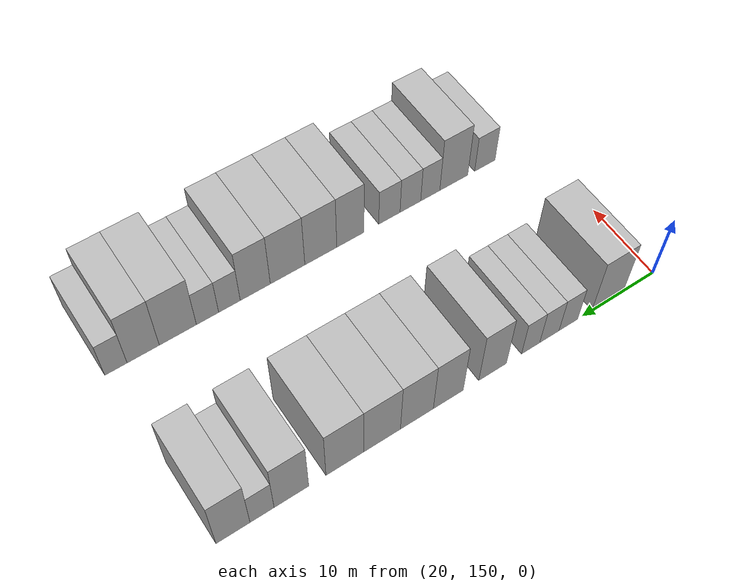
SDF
<sdf version="1.6">
 <world name="default">
  <model name="building_86">
   <static>1</static>
   <pose>25.0000 156.4471 0 0.000000 0.000000 0.000000</pose>
   <link name="link">
    <pose>0 0 4.50 0 0 0</pose>
    <collision name="collision"><geometry><box><size>10.0000 4.4266 9.0000</size></box></geometry></collision>
    <visual name="visual">
     <cast_shadows>0</cast_shadows>
     <geometry><box><size>10.0000 4.4266 9.0000</size></box></geometry>
     <material>
      <script>
       <uri>model://HANNAS_wall/materials/scripts</uri>
       <uri>model://HANNAS_wall/materials/textures</uri>
       <name>vrc/HANNAS_wall</name>
      </script>
     </material>
    </visual>
   </link>
  </model>
  <model name="building_87">
   <static>1</static>
   <pose>25.0000 161.9369 0 0.000000 0.000000 0.000000</pose>
   <link name="link">
    <pose>0 0 3.00 0 0 0</pose>
    <collision name="collision"><geometry><box><size>10.0000 2.5530 6.0000</size></box></geometry></collision>
    <visual name="visual">
     <cast_shadows>0</cast_shadows>
     <geometry><box><size>10.0000 2.5530 6.0000</size></box></geometry>
     <material>
      <script>
       <uri>model://HANNAS_wall/materials/scripts</uri>
       <uri>model://HANNAS_wall/materials/textures</uri>
       <name>vrc/HANNAS_wall</name>
      </script>
     </material>
    </visual>
   </link>
  </model>
  <model name="building_88">
   <static>1</static>
   <pose>25.0000 164.5136 0 0.000000 0.000000 0.000000</pose>
   <link name="link">
    <pose>0 0 3.00 0 0 0</pose>
    <collision name="collision"><geometry><box><size>10.0000 2.6004 6.0000</size></box></geometry></collision>
    <visual name="visual">
     <cast_shadows>0</cast_shadows>
     <geometry><box><size>10.0000 2.6004 6.0000</size></box></geometry>
     <material>
      <script>
       <uri>model://HANNAS_wall/materials/scripts</uri>
       <uri>model://HANNAS_wall/materials/textures</uri>
       <name>vrc/HANNAS_wall</name>
      </script>
     </material>
    </visual>
   </link>
  </model>
  <model name="building_89">
   <static>1</static>
   <pose>25.0000 167.0286 0 0.000000 0.000000 0.000000</pose>
   <link name="link">
    <pose>0 0 3.00 0 0 0</pose>
    <collision name="collision"><geometry><box><size>10.0000 2.4295 6.0000</size></box></geometry></collision>
    <visual name="visual">
     <cast_shadows>0</cast_shadows>
     <geometry><box><size>10.0000 2.4295 6.0000</size></box></geometry>
     <material>
      <script>
       <uri>model://HANNAS_wall/materials/scripts</uri>
       <uri>model://HANNAS_wall/materials/textures</uri>
       <name>vrc/HANNAS_wall</name>
      </script>
     </material>
    </visual>
   </link>
  </model>
  <model name="building_90">
   <static>1</static>
   <pose>25.0000 172.0446 0 0.000000 0.000000 0.000000</pose>
   <link name="link">
    <pose>0 0 4.50 0 0 0</pose>
    <collision name="collision"><geometry><box><size>10.0000 3.6026 9.0000</size></box></geometry></collision>
    <visual name="visual">
     <cast_shadows>0</cast_shadows>
     <geometry><box><size>10.0000 3.6026 9.0000</size></box></geometry>
     <material>
      <script>
       <uri>model://HANNAS_wall/materials/scripts</uri>
       <uri>model://HANNAS_wall/materials/textures</uri>
       <name>vrc/HANNAS_wall</name>
      </script>
     </material>
    </visual>
   </link>
  </model>
  <model name="building_91">
   <static>1</static>
   <pose>25.0000 177.7338 0 0.000000 0.000000 0.000000</pose>
   <link name="link">
    <pose>0 0 4.50 0 0 0</pose>
    <collision name="collision"><geometry><box><size>10.0000 3.7758 9.0000</size></box></geometry></collision>
    <visual name="visual">
     <cast_shadows>0</cast_shadows>
     <geometry><box><size>10.0000 3.7758 9.0000</size></box></geometry>
     <material>
      <script>
       <uri>model://HANNAS_wall/materials/scripts</uri>
       <uri>model://HANNAS_wall/materials/textures</uri>
       <name>vrc/HANNAS_wall</name>
      </script>
     </material>
    </visual>
   </link>
  </model>
  <model name="building_92">
   <static>1</static>
   <pose>25.0000 181.6630 0 0.000000 0.000000 0.000000</pose>
   <link name="link">
    <pose>0 0 4.50 0 0 0</pose>
    <collision name="collision"><geometry><box><size>10.0000 4.0826 9.0000</size></box></geometry></collision>
    <visual name="visual">
     <cast_shadows>0</cast_shadows>
     <geometry><box><size>10.0000 4.0826 9.0000</size></box></geometry>
     <material>
      <script>
       <uri>model://HANNAS_wall/materials/scripts</uri>
       <uri>model://HANNAS_wall/materials/textures</uri>
       <name>vrc/HANNAS_wall</name>
      </script>
     </material>
    </visual>
   </link>
  </model>
  <model name="building_93">
   <static>1</static>
   <pose>25.0000 185.9407 0 0.000000 0.000000 0.000000</pose>
   <link name="link">
    <pose>0 0 4.50 0 0 0</pose>
    <collision name="collision"><geometry><box><size>10.0000 4.4726 9.0000</size></box></geometry></collision>
    <visual name="visual">
     <cast_shadows>0</cast_shadows>
     <geometry><box><size>10.0000 4.4726 9.0000</size></box></geometry>
     <material>
      <script>
       <uri>model://HANNAS_wall/materials/scripts</uri>
       <uri>model://HANNAS_wall/materials/textures</uri>
       <name>vrc/HANNAS_wall</name>
      </script>
     </material>
    </visual>
   </link>
  </model>
  <model name="building_94">
   <static>1</static>
   <pose>25.0000 190.4036 0 0.000000 0.000000 0.000000</pose>
   <link name="link">
    <pose>0 0 4.50 0 0 0</pose>
    <collision name="collision"><geometry><box><size>10.0000 4.4531 9.0000</size></box></geometry></collision>
    <visual name="visual">
     <cast_shadows>0</cast_shadows>
     <geometry><box><size>10.0000 4.4531 9.0000</size></box></geometry>
     <material>
      <script>
       <uri>model://HANNAS_wall/materials/scripts</uri>
       <uri>model://HANNAS_wall/materials/textures</uri>
       <name>vrc/HANNAS_wall</name>
      </script>
     </material>
    </visual>
   </link>
  </model>
  <model name="building_95">
   <static>1</static>
   <pose>25.0000 196.6165 0 0.000000 0.000000 0.000000</pose>
   <link name="link">
    <pose>0 0 4.50 0 0 0</pose>
    <collision name="collision"><geometry><box><size>10.0000 3.9728 9.0000</size></box></geometry></collision>
    <visual name="visual">
     <cast_shadows>0</cast_shadows>
     <geometry><box><size>10.0000 3.9728 9.0000</size></box></geometry>
     <material>
      <script>
       <uri>model://HANNAS_wall/materials/scripts</uri>
       <uri>model://HANNAS_wall/materials/textures</uri>
       <name>vrc/HANNAS_wall</name>
      </script>
     </material>
    </visual>
   </link>
  </model>
  <model name="building_96">
   <static>1</static>
   <pose>25.0000 199.9591 0 0.000000 0.000000 0.000000</pose>
   <link name="link">
    <pose>0 0 3.00 0 0 0</pose>
    <collision name="collision"><geometry><box><size>10.0000 2.7123 6.0000</size></box></geometry></collision>
    <visual name="visual">
     <cast_shadows>0</cast_shadows>
     <geometry><box><size>10.0000 2.7123 6.0000</size></box></geometry>
     <material>
      <script>
       <uri>model://HANNAS_wall/materials/scripts</uri>
       <uri>model://HANNAS_wall/materials/textures</uri>
       <name>vrc/HANNAS_wall</name>
      </script>
     </material>
    </visual>
   </link>
  </model>
  <model name="building_97">
   <static>1</static>
   <pose>25.0000 203.2015 0 0.000000 0.000000 0.000000</pose>
   <link name="link">
    <pose>0 0 4.50 0 0 0</pose>
    <collision name="collision"><geometry><box><size>10.0000 3.7725 9.0000</size></box></geometry></collision>
    <visual name="visual">
     <cast_shadows>0</cast_shadows>
     <geometry><box><size>10.0000 3.7725 9.0000</size></box></geometry>
     <material>
      <script>
       <uri>model://HANNAS_wall/materials/scripts</uri>
       <uri>model://HANNAS_wall/materials/textures</uri>
       <name>vrc/HANNAS_wall</name>
      </script>
     </material>
    </visual>
   </link>
  </model>
  <model name="building_188">
   <static>1</static>
   <pose>47.0000 156.4634 0 0.000000 0.000000 0.000000</pose>
   <link name="link">
    <pose>0 0 3.00 0 0 0</pose>
    <collision name="collision"><geometry><box><size>10.0000 2.9594 6.0000</size></box></geometry></collision>
    <visual name="visual">
     <cast_shadows>0</cast_shadows>
     <geometry><box><size>10.0000 2.9594 6.0000</size></box></geometry>
     <material>
      <script>
       <uri>model://HANNAS_wall/materials/scripts</uri>
       <uri>model://HANNAS_wall/materials/textures</uri>
       <name>vrc/HANNAS_wall</name>
      </script>
     </material>
    </visual>
   </link>
  </model>
  <model name="building_189">
   <static>1</static>
   <pose>47.0000 160.9398 0 0.000000 0.000000 0.000000</pose>
   <link name="link">
    <pose>0 0 4.50 0 0 0</pose>
    <collision name="collision"><geometry><box><size>10.0000 3.9934 9.0000</size></box></geometry></collision>
    <visual name="visual">
     <cast_shadows>0</cast_shadows>
     <geometry><box><size>10.0000 3.9934 9.0000</size></box></geometry>
     <material>
      <script>
       <uri>model://HANNAS_wall/materials/scripts</uri>
       <uri>model://HANNAS_wall/materials/textures</uri>
       <name>vrc/HANNAS_wall</name>
      </script>
     </material>
    </visual>
   </link>
  </model>
  <model name="building_190">
   <static>1</static>
   <pose>47.0000 164.2785 0 0.000000 0.000000 0.000000</pose>
   <link name="link">
    <pose>0 0 3.00 0 0 0</pose>
    <collision name="collision"><geometry><box><size>10.0000 2.6839 6.0000</size></box></geometry></collision>
    <visual name="visual">
     <cast_shadows>0</cast_shadows>
     <geometry><box><size>10.0000 2.6839 6.0000</size></box></geometry>
     <material>
      <script>
       <uri>model://HANNAS_wall/materials/scripts</uri>
       <uri>model://HANNAS_wall/materials/textures</uri>
       <name>vrc/HANNAS_wall</name>
      </script>
     </material>
    </visual>
   </link>
  </model>
  <model name="building_191">
   <static>1</static>
   <pose>47.0000 167.0557 0 0.000000 0.000000 0.000000</pose>
   <link name="link">
    <pose>0 0 3.00 0 0 0</pose>
    <collision name="collision"><geometry><box><size>10.0000 2.8705 6.0000</size></box></geometry></collision>
    <visual name="visual">
     <cast_shadows>0</cast_shadows>
     <geometry><box><size>10.0000 2.8705 6.0000</size></box></geometry>
     <material>
      <script>
       <uri>model://HANNAS_wall/materials/scripts</uri>
       <uri>model://HANNAS_wall/materials/textures</uri>
       <name>vrc/HANNAS_wall</name>
      </script>
     </material>
    </visual>
   </link>
  </model>
  <model name="building_192">
   <static>1</static>
   <pose>47.0000 169.9520 0 0.000000 0.000000 0.000000</pose>
   <link name="link">
    <pose>0 0 3.00 0 0 0</pose>
    <collision name="collision"><geometry><box><size>10.0000 2.9221 6.0000</size></box></geometry></collision>
    <visual name="visual">
     <cast_shadows>0</cast_shadows>
     <geometry><box><size>10.0000 2.9221 6.0000</size></box></geometry>
     <material>
      <script>
       <uri>model://HANNAS_wall/materials/scripts</uri>
       <uri>model://HANNAS_wall/materials/textures</uri>
       <name>vrc/HANNAS_wall</name>
      </script>
     </material>
    </visual>
   </link>
  </model>
  <model name="building_193">
   <static>1</static>
   <pose>47.0000 175.2316 0 0.000000 0.000000 0.000000</pose>
   <link name="link">
    <pose>0 0 4.50 0 0 0</pose>
    <collision name="collision"><geometry><box><size>10.0000 3.6372 9.0000</size></box></geometry></collision>
    <visual name="visual">
     <cast_shadows>0</cast_shadows>
     <geometry><box><size>10.0000 3.6372 9.0000</size></box></geometry>
     <material>
      <script>
       <uri>model://HANNAS_wall/materials/scripts</uri>
       <uri>model://HANNAS_wall/materials/textures</uri>
       <name>vrc/HANNAS_wall</name>
      </script>
     </material>
    </visual>
   </link>
  </model>
  <model name="building_194">
   <static>1</static>
   <pose>47.0000 179.1455 0 0.000000 0.000000 0.000000</pose>
   <link name="link">
    <pose>0 0 4.50 0 0 0</pose>
    <collision name="collision"><geometry><box><size>10.0000 4.1905 9.0000</size></box></geometry></collision>
    <visual name="visual">
     <cast_shadows>0</cast_shadows>
     <geometry><box><size>10.0000 4.1905 9.0000</size></box></geometry>
     <material>
      <script>
       <uri>model://HANNAS_wall/materials/scripts</uri>
       <uri>model://HANNAS_wall/materials/textures</uri>
       <name>vrc/HANNAS_wall</name>
      </script>
     </material>
    </visual>
   </link>
  </model>
  <model name="building_195">
   <static>1</static>
   <pose>47.0000 183.4636 0 0.000000 0.000000 0.000000</pose>
   <link name="link">
    <pose>0 0 4.50 0 0 0</pose>
    <collision name="collision"><geometry><box><size>10.0000 4.4457 9.0000</size></box></geometry></collision>
    <visual name="visual">
     <cast_shadows>0</cast_shadows>
     <geometry><box><size>10.0000 4.4457 9.0000</size></box></geometry>
     <material>
      <script>
       <uri>model://HANNAS_wall/materials/scripts</uri>
       <uri>model://HANNAS_wall/materials/textures</uri>
       <name>vrc/HANNAS_wall</name>
      </script>
     </material>
    </visual>
   </link>
  </model>
  <model name="building_196">
   <static>1</static>
   <pose>47.0000 187.5838 0 0.000000 0.000000 0.000000</pose>
   <link name="link">
    <pose>0 0 4.50 0 0 0</pose>
    <collision name="collision"><geometry><box><size>10.0000 3.7947 9.0000</size></box></geometry></collision>
    <visual name="visual">
     <cast_shadows>0</cast_shadows>
     <geometry><box><size>10.0000 3.7947 9.0000</size></box></geometry>
     <material>
      <script>
       <uri>model://HANNAS_wall/materials/scripts</uri>
       <uri>model://HANNAS_wall/materials/textures</uri>
       <name>vrc/HANNAS_wall</name>
      </script>
     </material>
    </visual>
   </link>
  </model>
  <model name="building_197">
   <static>1</static>
   <pose>47.0000 190.8206 0 0.000000 0.000000 0.000000</pose>
   <link name="link">
    <pose>0 0 3.00 0 0 0</pose>
    <collision name="collision"><geometry><box><size>10.0000 2.6788 6.0000</size></box></geometry></collision>
    <visual name="visual">
     <cast_shadows>0</cast_shadows>
     <geometry><box><size>10.0000 2.6788 6.0000</size></box></geometry>
     <material>
      <script>
       <uri>model://HANNAS_wall/materials/scripts</uri>
       <uri>model://HANNAS_wall/materials/textures</uri>
       <name>vrc/HANNAS_wall</name>
      </script>
     </material>
    </visual>
   </link>
  </model>
  <model name="building_198">
   <static>1</static>
   <pose>47.0000 193.5256 0 0.000000 0.000000 0.000000</pose>
   <link name="link">
    <pose>0 0 3.00 0 0 0</pose>
    <collision name="collision"><geometry><box><size>10.0000 2.7313 6.0000</size></box></geometry></collision>
    <visual name="visual">
     <cast_shadows>0</cast_shadows>
     <geometry><box><size>10.0000 2.7313 6.0000</size></box></geometry>
     <material>
      <script>
       <uri>model://HANNAS_wall/materials/scripts</uri>
       <uri>model://HANNAS_wall/materials/textures</uri>
       <name>vrc/HANNAS_wall</name>
      </script>
     </material>
    </visual>
   </link>
  </model>
  <model name="building_199">
   <static>1</static>
   <pose>47.0000 197.1258 0 0.000000 0.000000 0.000000</pose>
   <link name="link">
    <pose>0 0 4.50 0 0 0</pose>
    <collision name="collision"><geometry><box><size>10.0000 4.4690 9.0000</size></box></geometry></collision>
    <visual name="visual">
     <cast_shadows>0</cast_shadows>
     <geometry><box><size>10.0000 4.4690 9.0000</size></box></geometry>
     <material>
      <script>
       <uri>model://HANNAS_wall/materials/scripts</uri>
       <uri>model://HANNAS_wall/materials/textures</uri>
       <name>vrc/HANNAS_wall</name>
      </script>
     </material>
    </visual>
   </link>
  </model>
  <model name="building_200">
   <static>1</static>
   <pose>47.0000 201.2596 0 0.000000 0.000000 0.000000</pose>
   <link name="link">
    <pose>0 0 4.50 0 0 0</pose>
    <collision name="collision"><geometry><box><size>10.0000 3.7986 9.0000</size></box></geometry></collision>
    <visual name="visual">
     <cast_shadows>0</cast_shadows>
     <geometry><box><size>10.0000 3.7986 9.0000</size></box></geometry>
     <material>
      <script>
       <uri>model://HANNAS_wall/materials/scripts</uri>
       <uri>model://HANNAS_wall/materials/textures</uri>
       <name>vrc/HANNAS_wall</name>
      </script>
     </material>
    </visual>
   </link>
  </model>
  <model name="building_201">
   <static>1</static>
   <pose>47.0000 204.4580 0 0.000000 0.000000 0.000000</pose>
   <link name="link">
    <pose>0 0 3.00 0 0 0</pose>
    <collision name="collision"><geometry><box><size>10.0000 2.5983 6.0000</size></box></geometry></collision>
    <visual name="visual">
     <cast_shadows>0</cast_shadows>
     <geometry><box><size>10.0000 2.5983 6.0000</size></box></geometry>
     <material>
      <script>
       <uri>model://HANNAS_wall/materials/scripts</uri>
       <uri>model://HANNAS_wall/materials/textures</uri>
       <name>vrc/HANNAS_wall</name>
      </script>
     </material>
    </visual>
   </link>
  </model>
 </world>
</sdf>
